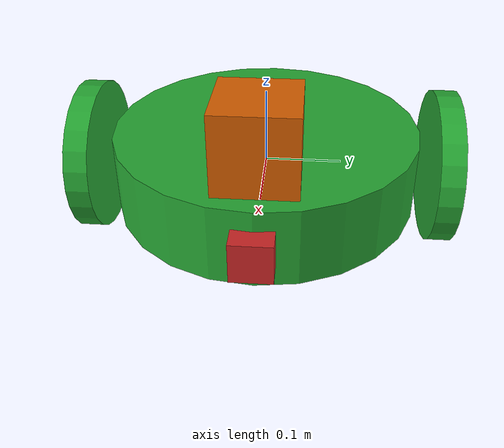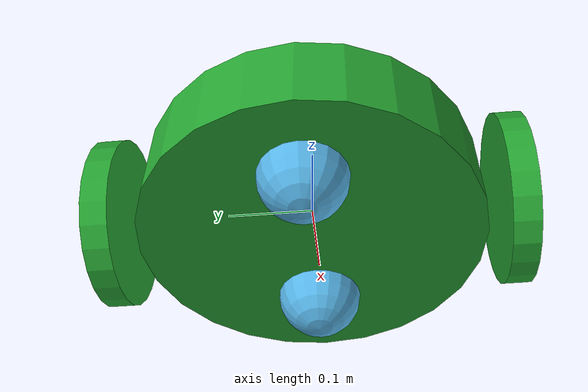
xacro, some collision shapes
<?xml version='1.0'?>

<robot name="my_robot" xmlns:xacro="http://www.ros.org/wiki/xacro">
  <xacro:include filename="$(find my_robot)/urdf/my_robot.gazebo" />

  <link name="robot_footprint"></link>

  <joint name="robot_footprint_joint" type="fixed">
    <origin xyz="0 0 0" rpy="0 0 0" />
    <parent link="robot_footprint"/>
    <child link="chassis" />
  </joint>

  <link name='chassis'>
    <pose>0 0 0.1 0 0 0</pose>

    <inertial>
      <mass value="15.0"/>
      <origin xyz="0.0 0 0" rpy=" 0 0 0"/>
      <inertia
          ixx="0.1" ixy="0" ixz="0"
          iyy="0.1" iyz="0"
          izz="0.1"
      />
    </inertial>

    <collision name='collision'>
      <origin xyz="0 0 0" rpy=" 0 0 0"/>
      <geometry>
        <cylinder radius="0.2" length="0.1"/>
      </geometry>
    </collision>

    <visual name='chassis_visual'>
      <origin xyz="0 0 0" rpy=" 0 0 0"/>
      <geometry>
        <cylinder radius="0.2" length="0.1"/>
      </geometry>
         <material name="green"/>
    </visual>

    <collision name='back_caster_collision'>
      <origin xyz="-0.1 0 -0.05" rpy=" 0 0 0"/>
      <geometry>
        <sphere radius="0.0499"/>
      </geometry>
    </collision>

    <visual name='back_caster_visual'>
      <origin xyz="-0.1 0 -0.05" rpy=" 0 0 0"/>
      <geometry>
        <sphere radius="0.05"/>
      </geometry>
    </visual>

    <collision name='front_caster_collision'>
      <origin xyz="0.1 0 -0.05" rpy=" 0 0 0"/>
      <geometry>
        <sphere radius="0.0499"/>
      </geometry>
    </collision>

    <visual name='front_caster_visual'>
      <origin xyz="0.1 0 -0.05" rpy=" 0 0 0"/>
      <geometry>
        <sphere radius="0.05"/>
      </geometry>
    </visual>

  </link>

<link name='LEFT_wheel'>
    <inertial>
      <mass value="5.0"/>
      <origin xyz="0 0 0" rpy=" 0 1.5707 1.5707"/>
      <inertia
          ixx="0.1" ixy="0" ixz="0"
          iyy="0.1" iyz="0"
          izz="0.1"
      />
    </inertial>

    <collision name='collision'>
      <origin xyz="0 0 0" rpy=" 0 1.5707 1.5707"/>
      <geometry>
        <cylinder radius="0.1" length="0.03"/>
      </geometry>
    </collision>

    <visual name='visual'>
      <origin xyz="0 0 0" rpy=" 0 1.5707 1.5707"/>
      <geometry>
        <cylinder radius="0.1" length="0.03"/>
      </geometry>
         <material name="green"/>
    </visual>

</link>

<joint type="continuous" name="left_wheel_hinge">
    <origin xyz="0 0.23 0" rpy="0 0 0"/>
    <child link="LEFT_wheel"/>
    <parent link="chassis"/>
    <axis xyz="0 1 0" rpy="0 0 0"/>
    <limit effort="10000" velocity="1000"/>
    <dynamics damping="1.0" friction="1.0"/>
</joint>

<link name='RIGHT_wheel'>
    <inertial>
      <mass value="5.0"/>
      <origin xyz="0 0 0" rpy=" 0 1.5707 1.5707"/>
      <inertia
          ixx="0.1" ixy="0" ixz="0"
          iyy="0.1" iyz="0"
          izz="0.1"
      />
    </inertial>

    <collision name='collision'>
      <origin xyz="0 0 0" rpy=" 0 1.5707 1.5707"/>
      <geometry>
        <cylinder radius="0.1" length="0.03"/>
      </geometry>
    </collision>

    <visual name='visual'>
      <origin xyz="0 0 0" rpy=" 0 1.5707 1.5707"/>
      <geometry>
        <cylinder radius="0.1" length="0.03"/>
      </geometry>
         <material name="green"/>
    </visual>

</link>
<joint type="continuous" name="right_wheel_hinge">
    <origin xyz="0 -0.23 0" rpy="0 0 0"/>
    <child link="RIGHT_wheel"/>
    <parent link="chassis"/>
    <axis xyz="0 1 0" rpy="0 0 0"/>
    <limit effort="10000" velocity="1000"/>
    <dynamics damping="1.0" friction="1.0"/>
</joint>

<link name='camera'>
    <inertial>
      <mass value="0.1"/>
      <origin xyz="0 0 0" rpy=" 0 0 0"/>
      <inertia
          ixx="1e-6" ixy="0" ixz="0"
          iyy="1e-6" iyz="0"
          izz="1e-6"
      />
    </inertial>

    <collision name='collision'>
      <origin xyz="0 0 0" rpy=" 0 0 0"/>
      <geometry>
        <box size="0.05 0.05 0.05"/>
      </geometry>
    </collision>

    <visual name='visual'>
      <origin xyz="0 0 0" rpy=" 0 0 0"/>
      <geometry>
        <box size="0.05 0.05 0.05"/>
      </geometry>
         <material name="red"/>
    </visual>
</link>
<joint type="fixed" name="camera_joint">
    <origin xyz="0.20 0 0" rpy="0 0 0"/>
    <child link="camera"/>
    <parent link="chassis"/>
    <axis xyz="0 1 0" rpy="0 0 0"/>
</joint>

<link name='hokuyo'>
    <inertial>
      <mass value="1e-5"/>
      <origin xyz="0 0 0" rpy=" 0 0 0"/>
      <inertia
          ixx="1e-6" ixy="0" ixz="0"
          iyy="1e-6" iyz="0"
          izz="1e-6"
      />
    </inertial>

    <collision name='collision'>
      <origin xyz="0 0 0" rpy=" 0 0 0"/>
      <geometry>
        <box size="0.1 0.1 0.1"/>
      </geometry>
    </collision>

    <visual name='visual'>
      <origin xyz="0 0 0" rpy=" 0 0 0"/>
      <geometry>
	    <mesh filename="package://my_robot/meshes/hokuyo.dae" />
      </geometry>
    </visual>
</link>
<joint type="fixed" name="hokuyo_joint">
    <origin xyz="0.125 0 .1" rpy="0 0 0"/>
    <child link="hokuyo"/>
    <parent link="chassis"/>
    <axis xyz="0 1 0" rpy="0 0 0"/>
</joint>

<gazebo reference="LEFT_wheel">
    <material>Gazebo/Yellow</material>
</gazebo>

<gazebo reference="RIGHT_wheel">
    <material>Gazebo/Yellow</material>
</gazebo>

</robot>
